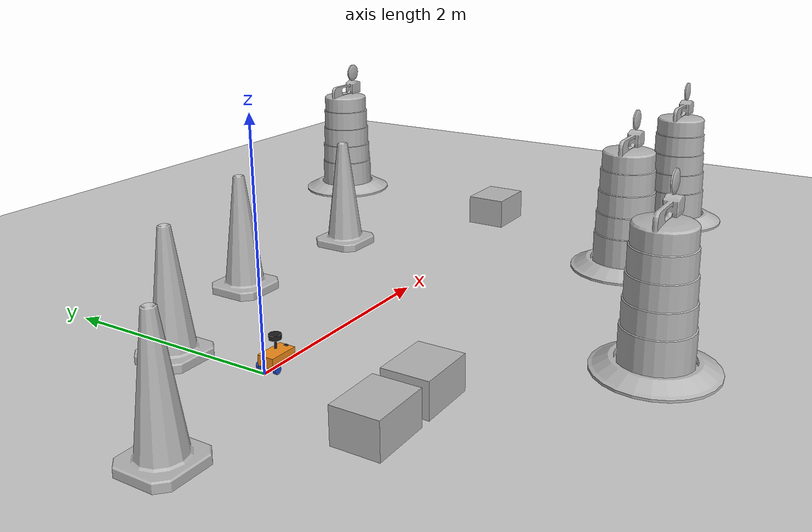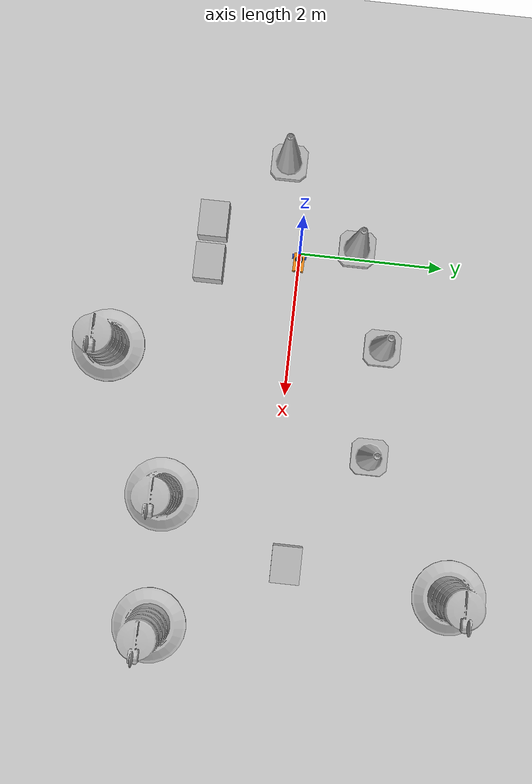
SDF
<sdf version="1.7">
 <world name="default">
  <light name="sun" type="directional">
   <pose>0 0 10 0 -0 0</pose>
   <diffuse>0.8 0.8 0.8 1</diffuse>
   <specular>0.2 0.2 0.2 1</specular>
   <attenuation>
    <range>1000</range>
    <constant>0.9</constant>
    <linear>0.01</linear>
    <quadratic>0.001</quadratic>
   </attenuation>
   <direction>-0.5 0.1 -0.9</direction>
   <spot><inner_angle>0</inner_angle><outer_angle>0</outer_angle><falloff>0</falloff></spot>
  </light>
  <model name="ground_plane">
   <static>1</static>
   <link name="link">
    <collision name="collision">
     <geometry><plane><normal>0 0 1</normal><size>100 100</size></plane></geometry>
     <surface><friction><ode><mu>100</mu><mu2>50</mu2></ode></friction></surface>
    </collision>
    <visual name="visual">
     <cast_shadows>0</cast_shadows>
     <geometry><plane><normal>0 0 1</normal><size>100 100</size></plane></geometry>
     <material>
      <script><uri>file://media/materials/scripts/gazebo.material</uri><name>Gazebo/Grey</name></script>
     </material>
    </visual>
   </link>
  </model>
  <gravity>0 0 -9.8</gravity>
  <magnetic_field>6e-06 2.3e-05 -4.2e-05</magnetic_field>
  <atmosphere type="adiabatic"/>
  <physics type="ode">
   <max_step_size>0.001</max_step_size>
   <real_time_factor>1</real_time_factor>
   <real_time_update_rate>1000</real_time_update_rate>
  </physics>
  <scene><ambient>0.4 0.4 0.4 1</ambient><background>0.7 0.7 0.7 1</background><shadows>1</shadows></scene>
  <spherical_coordinates>
   <surface_model>EARTH_WGS84</surface_model>
   <latitude_deg>0</latitude_deg>
   <longitude_deg>0</longitude_deg>
   <elevation>0</elevation>
   <heading_deg>0</heading_deg>
  </spherical_coordinates>
  <model name="amrobot_one">
   <link name="base_link">
    <inertial>
     <pose>0.107429 0 0.067786 0 -0 0</pose>
     <mass>0.7</mass>
     <inertia>
      <ixx>0.00462993</ixx>
      <ixy>0</ixy>
      <ixz>0.000919961</ixz>
      <iyy>0.00715232</iyy>
      <iyz>0</iyz>
      <izz>0.0045264</izz>
     </inertia>
    </inertial>
    <collision name="base_link_fixed_joint_lump__chassis_collision">
     <pose>0.095 0 0.055 0 -0 0</pose>
     <geometry><box><size>0.255 0.15 0.09</size></box></geometry>
    </collision>
    <collision name="base_link_fixed_joint_lump__caster_wheel_collision_1">
     <pose>0.1875 0 -0.0225 0 -0 0</pose>
     <geometry><sphere><radius>0.01</radius></sphere></geometry>
     <surface><friction><ode><mu>0.001</mu><mu2>0.001</mu2></ode></friction></surface>
    </collision>
    <collision name="base_link_fixed_joint_lump__laser_frame_collision_2">
     <pose>0.0895 0 0.222 0 -0 0</pose>
     <geometry><cylinder><length>0.04</length><radius>0.05</radius></cylinder></geometry>
    </collision>
    <visual name="base_link_fixed_joint_lump__chassis_visual">
     <pose>0.095 0 0.055 0 -0 0</pose>
     <geometry><box><size>0.255 0.15 0.09</size></box></geometry>
     <material>
      <script><name>Gazebo/Orange</name><uri>file://media/materials/scripts/gazebo.material</uri></script>
     </material>
    </visual>
    <visual name="base_link_fixed_joint_lump__caster_wheel_visual_1">
     <pose>0.1875 0 -0.0225 0 -0 0</pose>
     <geometry><sphere><radius>0.01</radius></sphere></geometry>
     <material>
      <script><name>Gazebo/White</name><uri>file://media/materials/scripts/gazebo.material</uri></script>
     </material>
    </visual>
    <visual name="base_link_fixed_joint_lump__face_link_visual_2">
     <pose>0.2225 0.05 0.065 3.14159 1.57079 3.14159</pose>
     <geometry><cylinder><length>0.002</length><radius>0.01</radius></cylinder></geometry>
     <material>
      <script><name>Gazebo/Black</name><uri>file://media/materials/scripts/gazebo.material</uri></script>
     </material>
    </visual>
    <visual name="base_link_fixed_joint_lump__face_link_visual_3">
     <pose>0.2225 -0.05 0.065 3.14159 1.57079 3.14159</pose>
     <geometry><cylinder><length>0.002</length><radius>0.01</radius></cylinder></geometry>
     <material>
      <script><name>Gazebo/Black</name><uri>file://media/materials/scripts/gazebo.material</uri></script>
     </material>
    </visual>
    <visual name="base_link_fixed_joint_lump__face_link_visual_4">
     <pose>0.2115 0 0.055 0 1.5 0</pose>
     <geometry><cylinder><length>0.02</length><radius>0.05</radius></cylinder></geometry>
     <material>
      <script><name>Gazebo/Black</name><uri>file://media/materials/scripts/gazebo.material</uri></script>
     </material>
    </visual>
    <visual name="base_link_fixed_joint_lump__laser_frame_visual_5">
     <pose>0.0895 0 0.222 0 -0 0</pose>
     <geometry><cylinder><length>0.04</length><radius>0.05</radius></cylinder></geometry>
     <material>
      <script><name>Gazebo/Black</name><uri>file://media/materials/scripts/gazebo.material</uri></script>
     </material>
    </visual>
    <visual name="base_link_fixed_joint_lump__laser_frame_visual_6">
     <pose>0.0895 0 0.172 0 -0 0</pose>
     <geometry><cylinder><length>0.1</length><radius>0.01</radius></cylinder></geometry>
     <material>
      <script><name>Gazebo/Black</name><uri>file://media/materials/scripts/gazebo.material</uri></script>
     </material>
    </visual>
    <sensor name="laser" type="ray">
     <visualize>0</visualize>
     <update_rate>10</update_rate>
     <ray>
      <scan>
       <horizontal>
        <samples>360</samples>
        <min_angle>-3.14</min_angle>
        <max_angle>3.14</max_angle>
        <resolution>1</resolution>
       </horizontal>
       <vertical><samples>1</samples><min_angle>0</min_angle><max_angle>0</max_angle></vertical>
      </scan>
      <range><min>0.3</min><max>12</max></range>
     </ray>
     <plugin name="laser_controller" filename="libgazebo_ros_ray_sensor.so">
      <ros><argument>~/out:=scan</argument></ros>
      <output_type>sensor_msgs/LaserScan</output_type>
      <frame_name>laser_frame</frame_name>
     </plugin>
     <pose>0.0895 0 0.222 0 -0 0</pose>
    </sensor>
   </link>
   <joint name="left_wheel_joint" type="revolute">
    <pose relative_to="base_link">0 0.085 0 -1.5708 0 0</pose>
    <parent>base_link</parent>
    <child>left_wheel</child>
    <axis>
     <xyz>0 0 1</xyz>
     <limit><lower>-1e+16</lower><upper>1e+16</upper></limit>
     <dynamics><spring_reference>0</spring_reference><spring_stiffness>0</spring_stiffness></dynamics>
    </axis>
   </joint>
   <link name="left_wheel">
    <pose relative_to="left_wheel_joint">0 0 0 0 -0 0</pose>
    <inertial>
     <mass>0.05</mass>
     <inertia>
      <ixx>1.58073e-05</ixx>
      <ixy>0</ixy>
      <ixz>0</ixz>
      <iyy>1.58073e-05</iyy>
      <iyz>0</iyz>
      <izz>2.64063e-05</izz>
     </inertia>
    </inertial>
    <collision name="left_wheel_collision">
     <geometry><sphere><radius>0.0325</radius></sphere></geometry>
    </collision>
    <visual name="left_wheel_visual">
     <geometry><cylinder><length>0.025</length><radius>0.0325</radius></cylinder></geometry>
     <material>
      <script><name>Gazebo/Blue</name><uri>file://media/materials/scripts/gazebo.material</uri></script>
     </material>
    </visual>
   </link>
   <joint name="right_wheel_joint" type="revolute">
    <pose relative_to="base_link">0 -0.085 0 1.5708 -0 0</pose>
    <parent>base_link</parent>
    <child>right_wheel</child>
    <axis>
     <xyz>0 0 -1</xyz>
     <limit><lower>-1e+16</lower><upper>1e+16</upper></limit>
     <dynamics><spring_reference>0</spring_reference><spring_stiffness>0</spring_stiffness></dynamics>
    </axis>
   </joint>
   <link name="right_wheel">
    <pose relative_to="right_wheel_joint">0 0 0 0 -0 0</pose>
    <inertial>
     <mass>0.05</mass>
     <inertia>
      <ixx>1.58073e-05</ixx>
      <ixy>0</ixy>
      <ixz>0</ixz>
      <iyy>1.58073e-05</iyy>
      <iyz>0</iyz>
      <izz>2.64063e-05</izz>
     </inertia>
    </inertial>
    <collision name="right_wheel_collision">
     <geometry><sphere><radius>0.0325</radius></sphere></geometry>
    </collision>
    <visual name="right_wheel_visual">
     <geometry><cylinder><length>0.025</length><radius>0.0325</radius></cylinder></geometry>
     <material>
      <script><name>Gazebo/Blue</name><uri>file://media/materials/scripts/gazebo.material</uri></script>
     </material>
    </visual>
   </link>
   <static>0</static>
   <plugin name="gazebo_ros2_control" filename="libgazebo_ros2_control.so">
    <parameters>/home/agvpc/amr_ws/install/amrobot_one/share/amrobot_one/config/my_controllers.yaml</parameters>
    <parameters>/home/agvpc/amr_ws/install/amrobot_one/share/amrobot_one/config/gaz_ros2_ctl_use_sim.yaml</parameters>
   </plugin>
   <pose>0.048196 -0.000271 0.032499 -1.2e-05 -6e-06 -0.021085</pose>
  </model>
  <model name="cardboard_box">
   <pose>-0.303544 -1.23089 0.149 0 -0 0</pose>
   <link name="link">
    <inertial>
     <mass>2</mass>
     <inertia>
      <ixx>0.0416667</ixx>
      <ixy>0</ixy>
      <ixz>0</ixz>
      <iyy>0.0566667</iyy>
      <iyz>0</iyz>
      <izz>0.0683333</izz>
     </inertia>
    </inertial>
    <collision name="collision">
     <geometry><box><size>0.5 0.4 0.3</size></box></geometry>
     <surface>
      <friction><ode><mu>1</mu><mu2>1</mu2></ode></friction>
      <contact><ode><kp>1e+07</kp><kd>1</kd><min_depth>0.001</min_depth><max_vel>0.1</max_vel></ode></contact>
     </surface>
    </collision>
    <visual name="visual">
     <pose>0 0 -0.15 0 -0 0</pose>
     <geometry>
      <mesh><uri>model://cardboard_box/meshes/cardboard_box.dae</uri><scale>1.25932 1.00745 0.755591</scale></mesh>
     </geometry>
    </visual>
   </link>
  </model>
  <model name="Construction Cone">
   <link name="link">
    <collision name="collision">
     <geometry>
      <mesh><scale>10 10 10</scale><uri>model://construction_cone/meshes/construction_cone.dae</uri></mesh>
     </geometry>
    </collision>
    <visual name="visual">
     <geometry>
      <mesh><scale>10 10 10</scale><uri>model://construction_cone/meshes/construction_cone.dae</uri></mesh>
     </geometry>
    </visual>
    <inertial>
     <inertia><ixx>1</ixx><ixy>0</ixy><ixz>0</ixz><iyy>1</iyy><iyz>0</iyz><izz>1</izz></inertia>
     <mass>1</mass>
    </inertial>
   </link>
   <pose>1.2106 1.2786 -0 0 -1e-06 0</pose>
  </model>
  <model name="Construction Cone_0">
   <link name="link">
    <collision name="collision">
     <geometry>
      <mesh><scale>10 10 10</scale><uri>model://construction_cone/meshes/construction_cone.dae</uri></mesh>
     </geometry>
    </collision>
    <visual name="visual">
     <geometry>
      <mesh><scale>10 10 10</scale><uri>model://construction_cone/meshes/construction_cone.dae</uri></mesh>
     </geometry>
    </visual>
    <inertial>
     <inertia><ixx>1</ixx><ixy>0</ixy><ixz>0</ixz><iyy>1</iyy><iyz>0</iyz><izz>1</izz></inertia>
     <mass>1</mass>
    </inertial>
   </link>
   <pose>2.72913 1.24709 -0 0 -1e-06 0</pose>
  </model>
  <model name="Construction Cone_1">
   <link name="link">
    <collision name="collision">
     <geometry>
      <mesh><scale>10 10 10</scale><uri>model://construction_cone/meshes/construction_cone.dae</uri></mesh>
     </geometry>
    </collision>
    <visual name="visual">
     <geometry>
      <mesh><scale>10 10 10</scale><uri>model://construction_cone/meshes/construction_cone.dae</uri></mesh>
     </geometry>
    </visual>
    <inertial>
     <inertia><ixx>1</ixx><ixy>0</ixy><ixz>0</ixz><iyy>1</iyy><iyz>0</iyz><izz>1</izz></inertia>
     <mass>1</mass>
    </inertial>
   </link>
   <pose>-0.140555 0.790583 -0 0 -0 0</pose>
  </model>
  <model name="Construction Cone_2">
   <link name="link">
    <collision name="collision">
     <geometry>
      <mesh><scale>10 10 10</scale><uri>model://construction_cone/meshes/construction_cone.dae</uri></mesh>
     </geometry>
    </collision>
    <visual name="visual">
     <geometry>
      <mesh><scale>10 10 10</scale><uri>model://construction_cone/meshes/construction_cone.dae</uri></mesh>
     </geometry>
    </visual>
    <inertial>
     <inertia><ixx>1</ixx><ixy>0</ixy><ixz>0</ixz><iyy>1</iyy><iyz>0</iyz><izz>1</izz></inertia>
     <mass>1</mass>
    </inertial>
   </link>
   <pose>-1.27203 -0.280591 -0 0 -1e-06 0</pose>
  </model>
  <model name="Construction Barrel">
   <link name="link">
    <inertial>
     <pose>0 0 0.4 0 -0 0</pose>
     <mass>500</mass>
     <inertia><ixx>51.2096</ixx><iyy>51.2096</iyy><izz>25</izz><ixy>0</ixy><ixz>0</ixz><iyz>0</iyz></inertia>
    </inertial>
    <collision name="collision">
     <geometry><mesh><uri>model://construction_barrel/meshes/construction_barrel.dae</uri></mesh></geometry>
    </collision>
    <visual name="visual">
     <geometry><mesh><uri>model://construction_barrel/meshes/construction_barrel.dae</uri></mesh></geometry>
    </visual>
   </link>
   <pose>1.56425 -2.51343 -1e-06 0 5e-06 -1e-05</pose>
  </model>
  <model name="Construction Barrel_0">
   <link name="link">
    <inertial>
     <pose>0 0 0.4 0 -0 0</pose>
     <mass>500</mass>
     <inertia><ixx>51.2096</ixx><iyy>51.2096</iyy><izz>25</izz><ixy>0</ixy><ixz>0</ixz><iyz>0</iyz></inertia>
    </inertial>
    <collision name="collision">
     <geometry><mesh><uri>model://construction_barrel/meshes/construction_barrel.dae</uri></mesh></geometry>
    </collision>
    <visual name="visual">
     <geometry><mesh><uri>model://construction_barrel/meshes/construction_barrel.dae</uri></mesh></geometry>
    </visual>
   </link>
   <pose>3.53792 -1.53799 -2e-06 -0 7e-06 -8e-06</pose>
  </model>
  <model name="Construction Barrel_1">
   <link name="link">
    <inertial>
     <pose>0 0 0.4 0 -0 0</pose>
     <mass>500</mass>
     <inertia><ixx>51.2096</ixx><iyy>51.2096</iyy><izz>25</izz><ixy>0</ixy><ixz>0</ixz><iyz>0</iyz></inertia>
    </inertial>
    <collision name="collision">
     <geometry><mesh><uri>model://construction_barrel/meshes/construction_barrel.dae</uri></mesh></geometry>
    </collision>
    <visual name="visual">
     <geometry><mesh><uri>model://construction_barrel/meshes/construction_barrel.dae</uri></mesh></geometry>
    </visual>
   </link>
   <pose>5.31815 -1.50782 -1e-06 3e-06 1e-05 -7e-06</pose>
  </model>
  <model name="Construction Barrel_2">
   <link name="link">
    <inertial>
     <pose>0 0 0.4 0 -0 0</pose>
     <mass>500</mass>
     <inertia><ixx>51.2096</ixx><iyy>51.2096</iyy><izz>25</izz><ixy>0</ixy><ixz>0</ixz><iyz>0</iyz></inertia>
    </inertial>
    <collision name="collision">
     <geometry><mesh><uri>model://construction_barrel/meshes/construction_barrel.dae</uri></mesh></geometry>
    </collision>
    <visual name="visual">
     <geometry><mesh><uri>model://construction_barrel/meshes/construction_barrel.dae</uri></mesh></geometry>
    </visual>
   </link>
   <pose>4.51858 2.52035 1e-06 2e-06 3e-06 -6e-06</pose>
  </model>
  <model name="cardboard_box_0">
   <pose>4.28704 0.258961 0.149021 2e-06 -2e-06 -0</pose>
   <link name="link">
    <inertial>
     <mass>2</mass>
     <inertia>
      <ixx>0.0416667</ixx>
      <ixy>0</ixy>
      <ixz>0</ixz>
      <iyy>0.0566667</iyy>
      <iyz>0</iyz>
      <izz>0.0683333</izz>
     </inertia>
    </inertial>
    <collision name="collision">
     <geometry><box><size>0.5 0.4 0.3</size></box></geometry>
     <surface>
      <friction><ode><mu>1</mu><mu2>1</mu2></ode></friction>
      <contact><ode><kp>1e+07</kp><kd>1</kd><min_depth>0.001</min_depth><max_vel>0.1</max_vel></ode></contact>
     </surface>
    </collision>
    <visual name="visual">
     <pose>0 0 -0.15 0 -0 0</pose>
     <geometry>
      <mesh><uri>model://cardboard_box/meshes/cardboard_box.dae</uri><scale>1.25932 1.00745 0.755591</scale></mesh>
     </geometry>
    </visual>
   </link>
  </model>
  <model name="cardboard_box_1">
   <pose>0.292291 -1.23 0.14951 2e-06 -2e-06 -0</pose>
   <link name="link">
    <inertial>
     <mass>2</mass>
     <inertia>
      <ixx>0.0416667</ixx>
      <ixy>0</ixy>
      <ixz>0</ixz>
      <iyy>0.0566667</iyy>
      <iyz>0</iyz>
      <izz>0.0683333</izz>
     </inertia>
    </inertial>
    <collision name="collision">
     <geometry><box><size>0.5 0.4 0.3</size></box></geometry>
     <surface>
      <friction><ode><mu>1</mu><mu2>1</mu2></ode></friction>
      <contact><ode><kp>1e+07</kp><kd>1</kd><min_depth>0.001</min_depth><max_vel>0.1</max_vel></ode></contact>
     </surface>
    </collision>
    <visual name="visual">
     <pose>0 0 -0.15 0 -0 0</pose>
     <geometry>
      <mesh><uri>model://cardboard_box/meshes/cardboard_box.dae</uri><scale>1.25932 1.00745 0.755591</scale></mesh>
     </geometry>
    </visual>
   </link>
  </model>
 </world>
</sdf>
